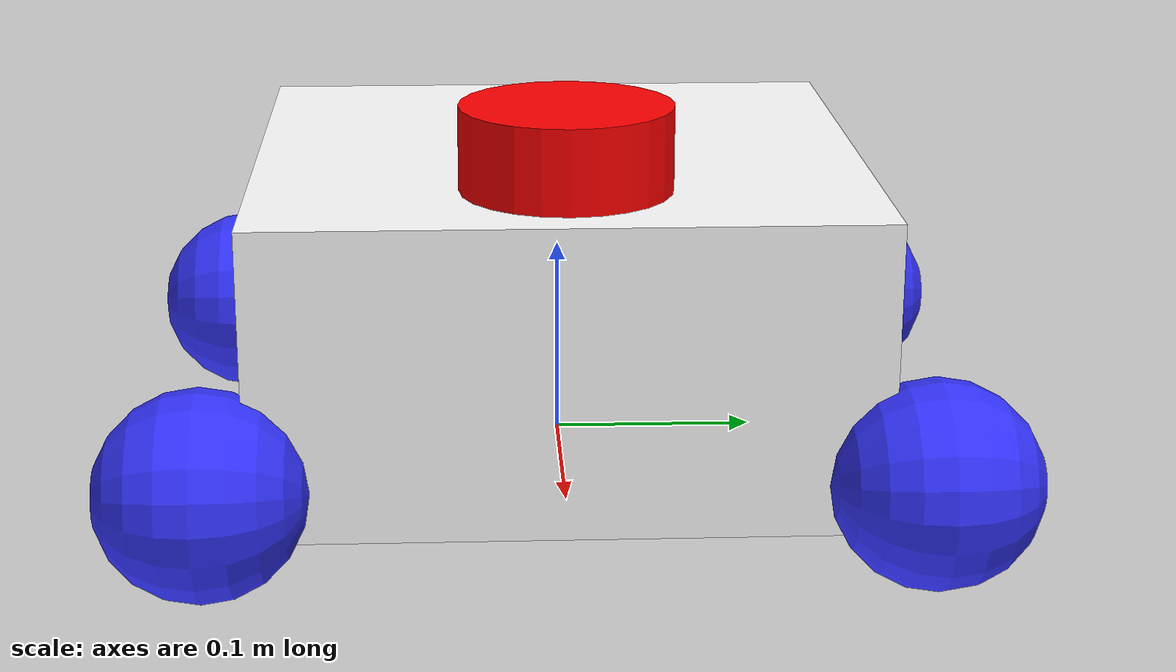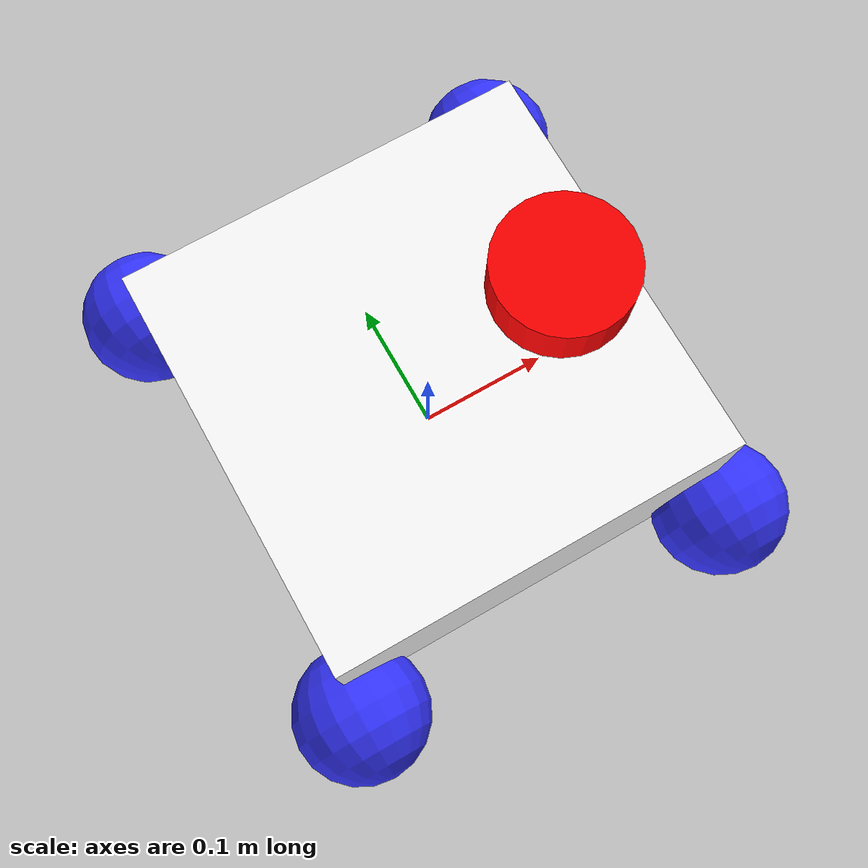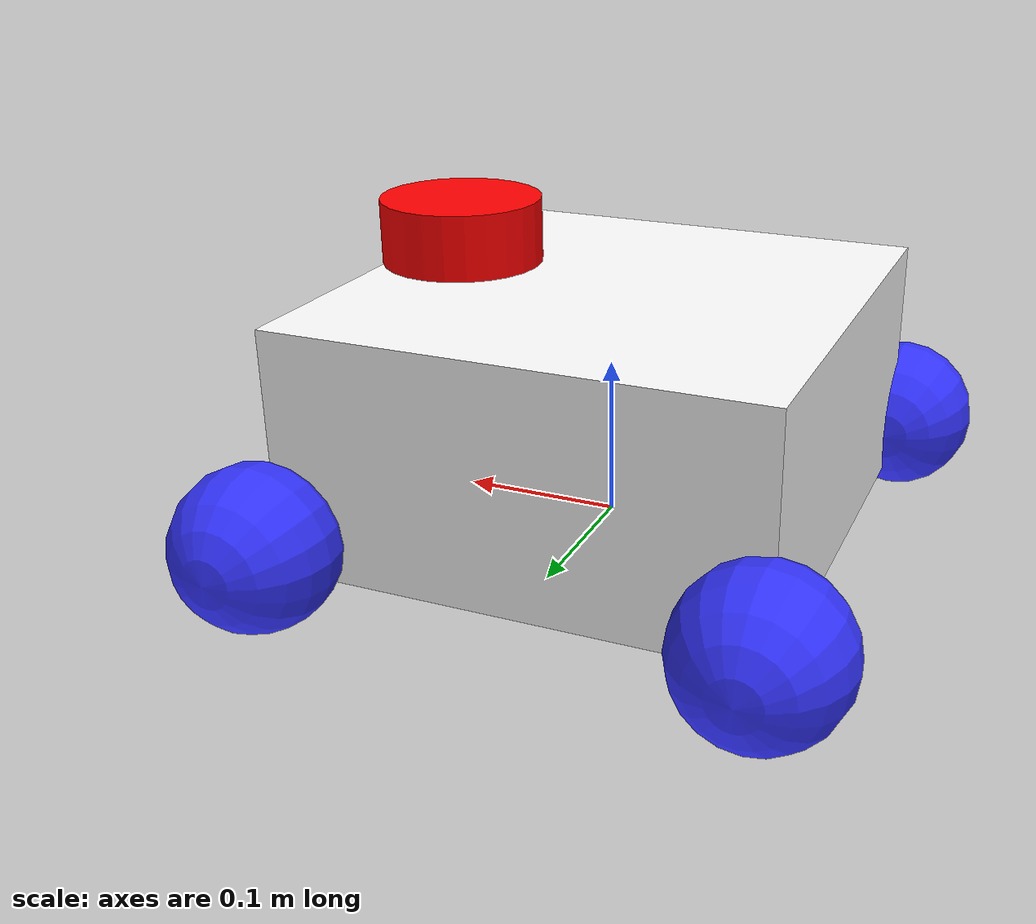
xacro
<?xml version="1.0"?>
<robot xmlns:xacro="http://www.ros.org/xacro" name="robot">
    <xacro:include filename="mecanum_sphere_core.xacro" />
    <xacro:include filename="ros2_control_mecanum_sphere.xacro"/>
    <xacro:include filename="mecanum_lidar.xacro"/>
</robot>

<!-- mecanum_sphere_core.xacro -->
<robot xmlns:xacro="http://www.ros.org/xacro"
      xmlns:gz="http://gazebosim.org/schema">

  <xacro:include filename="inertial_macros_mecanum_sphere.xacro"/>

  <!-- Define Materials -->
  <material name="white">
        <color rgba="1 1 1 1" />
    </material>

    <material name="orange">
        <color rgba="1 0.3 0.1 1"/>
    </material>

    <material name="blue">
        <color rgba="0.2 0.2 1 1"/>
    </material>

    <material name="black">
        <color rgba="0 0 0 1"/>
    </material>

    <material name="red">
        <color rgba="1 0 0 1"></color>
    </material>

  <!-- BASE LINK -->
  <link name="base_link"/>

  <!-- BASE_FOOTPRINT LINK -->
  <joint name="base_footprint_joint" type="fixed">
    <parent link="base_link"/>
    <child link="base_footprint"/>
    <origin xyz="0 0 0" rpy="0 0 0"/>
  </joint>
  <link name="base_footprint"/>

  <!-- CHASSIS -->
  <joint name="chassis_joint" type="fixed">
    <parent link="base_link"/>
    <child link="chassis"/>
    <origin xyz="0 0 0"/>
  </joint>

  <link name="chassis">
    <visual>
      <origin xyz="0 0 0.075"/>
      <geometry>
        <box size="0.3 0.3 0.15"/>
      </geometry>
      <material name="white"/>
    </visual>
    <collision>
      <origin xyz="0 0 0.075"/>
      <geometry>
        <box size="0.3 0.3 0.15"/>
      </geometry>
    </collision>
    <xacro:inertial_box mass="6.0" x="0.3" y="0.3" z="0.15">
      <origin xyz="0 0 0.075" rpy="0 0 0"/>
    </xacro:inertial_box>
  </link>

  <!-- FRONT LEFT WHEEL -->
  <joint name="front_left_wheel_joint" type="continuous">
    <parent link="base_link"/>
    <child link="front_left_wheel"/>
    <origin xyz="0.15 0.17 0.025" rpy="-1.5708 0 0"/>
    <axis xyz="0 0 1"/>
  </joint>

  <link name="front_left_wheel">
    <visual>
      <geometry>
        <sphere radius="0.05"/>
      </geometry>
      <material name="blue"/>
    </visual>
    <collision>
      <geometry>
        <sphere radius="0.05"/>
      </geometry>
    </collision>
    <xacro:inertial_sphere mass="1" radius="0.05">
      <origin xyz="0 0 0" rpy="0 0 0"/>
    </xacro:inertial_sphere>
  </link>

  <!-- FRONT RIGHT WHEEL -->
  <joint name="front_right_wheel_joint" type="continuous">
    <parent link="base_link"/>
    <child link="front_right_wheel"/>
    <origin xyz="0.15 -0.17 0.025" rpy="-1.5708 0 0"/>
    <axis xyz="0 0 1"/>
  </joint>

  <link name="front_right_wheel">
    <visual>
      <geometry>
        <sphere radius="0.05"/>
      </geometry>
      <material name="blue"/>
    </visual>
    <collision>
      <geometry>
        <sphere radius="0.05"/>
      </geometry>
    </collision>
    <xacro:inertial_sphere mass="1" radius="0.05">
      <origin xyz="0 0 0" rpy="0 0 0"/>
    </xacro:inertial_sphere>
  </link>

  <!-- REAR LEFT WHEEL -->
  <joint name="rear_left_wheel_joint" type="continuous">
    <parent link="base_link"/>
    <child link="rear_left_wheel"/>
    <origin xyz="-0.15 0.17 0.025" rpy="-1.5708 0 0"/>
    <axis xyz="0 0 1"/>
  </joint>

  <link name="rear_left_wheel">
    <visual>
      <geometry>
        <sphere radius="0.05"/>
      </geometry>
      <material name="blue"/>
    </visual>
    <collision>
      <geometry>
        <sphere radius="0.05"/>
      </geometry>>
    </collision>
    <xacro:inertial_sphere mass="1" radius="0.05">
      <origin xyz="0 0 0" rpy="0 0 0"/>
    </xacro:inertial_sphere>
  </link>

  <!-- REAR RIGHT WHEEL -->
  <joint name="rear_right_wheel_joint" type="continuous">
    <parent link="base_link"/>
    <child link="rear_right_wheel"/>
    <origin xyz="-0.15 -0.17 0.025" rpy="-1.5708 0 0"/> <!-- No rotation needed for spheres -->
    <axis xyz="0 0 1"/>
  </joint>

<link name="rear_right_wheel">
  <visual>
    <geometry>
      <sphere radius="0.05"/>
    </geometry>
    <material name="blue"/>
  </visual>
  <collision>
    <geometry>
      <sphere radius="0.05"/>
    </geometry>
  </collision>
  <xacro:inertial_sphere mass="1" radius="0.05">
    <origin xyz="0 0 0" rpy="0 0 0"/>
  </xacro:inertial_sphere>
</link>

  <gazebo reference='front_left_wheel'>
    <collision>
      <surface>
        <friction>
          <ode>
            <mu>1.0</mu>
            <mu2>0.0</mu2>
            <fdir1 gz:expressed_in="base_link">1 -1 0</fdir1>
          </ode>
        </friction>
      </surface>
    </collision>
  </gazebo>
  <gazebo reference='front_right_wheel'>
    <collision>
      <surface>
        <friction>
          <ode>
            <mu>1.0</mu>
            <mu2>0.0</mu2>
            <fdir1 gz:expressed_in="base_link">1 1 0</fdir1>
          </ode>
        </friction>
      </surface>
    </collision>
  </gazebo>
  <gazebo reference='rear_left_wheel'>
    <collision>
      <surface>
        <friction>
          <ode>
            <mu>1.0</mu>
            <mu2>0.0</mu2>
            <fdir1 gz:expressed_in="base_link">1 1 0</fdir1>
          </ode>
        </friction>
      </surface>
    </collision>
  </gazebo>
  <gazebo reference='rear_right_wheel'>
    <collision>
      <surface>
        <friction>
          <ode>
            <mu>1.0</mu>
            <mu2>0.0</mu2>
            <fdir1 gz:expressed_in="base_link">1 -1 0</fdir1>
          </ode>
        </friction>
      </surface>
    </collision>
  </gazebo>

</robot>

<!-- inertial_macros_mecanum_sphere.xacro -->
<robot xmlns:xacro="http://www.ros.org/wiki/xacro" >

    <!-- Specify some standard inertial calculations https://en.wikipedia.org/wiki/List_of_moments_of_inertia -->
    <!-- These make use of xacro's mathematical functionality -->

    <xacro:macro name="inertial_sphere" params="mass radius *origin">
        <inertial>
            <xacro:insert_block name="origin"/>
            <mass value="${mass}" />
            <inertia ixx="${(2/5) * mass * (radius*radius)}" ixy="0.0" ixz="0.0"
                    iyy="${(2/5) * mass * (radius*radius)}" iyz="0.0"
                    izz="${(2/5) * mass * (radius*radius)}" />
        </inertial>
    </xacro:macro>

    <xacro:macro name="inertial_box" params="mass x y z *origin">
        <inertial>
            <xacro:insert_block name="origin"/>
            <mass value="${mass}" />
            <inertia ixx="${(1/12) * mass * (y*y+z*z)}" ixy="0.0" ixz="0.0"
                    iyy="${(1/12) * mass * (x*x+z*z)}" iyz="0.0"
                    izz="${(1/12) * mass * (x*x+y*y)}" />
        </inertial>
    </xacro:macro>

</robot>

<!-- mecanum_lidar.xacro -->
<robot xmlns:xacro="http://www.ros.org/wiki/xacro">

    <xacro:include filename="inertial_macros_mecanum_sphere.xacro"/>

    <joint name="laser_joint" type="fixed">
        <parent link="chassis"/>
        <child link="laser_frame"/>
        <!-- puts origin of laser link on top of robot -->
        <origin xyz="0.1 0 0.175" rpy="0 0 0"/>
    </joint>

    <link name="laser_frame">
        <visual>
            <geometry>
                <cylinder radius="0.05" length="0.04"/>
            </geometry>
            <material name="red"/>
        </visual>
        <collision>
            <geometry>
                <cylinder radius="0.05" length="0.04"/>
            </geometry>
        </collision>
        <xacro:inertial_cylinder mass="0.1" length="0.04" radius="0.05">
            <origin xyz="0 0 0" rpy="0 0 0"/>
        </xacro:inertial_cylinder>
    </link>

    <!-- Gazebo Tag -->
    <gazebo reference="laser_frame">
        <material>Gazebo/Red</material>

        <sensor name="laser" type="gpu_lidar">
            <pose> 0 0 0 0 0 0 </pose>
            <!-- visualize in gazebo -->
            <visualize>false</visualize>
            <!-- 10 updates a second -->
            <update_rate>10</update_rate>
            <!-- parameters for lidar sensor -->
            <lidar>
                <scan>
                    <horizontal>
                        <!-- resolution of 1 (1 degree of error) -->
                        <samples>360</samples>
                        <min_angle>-3.14</min_angle>
                        <max_angle>3.14</max_angle>
                    </horizontal>
                </scan>
                <range>
                    <min>0.3</min>
                    <max>12</max>
                </range>
            </lidar>
                <topic>scan</topic>
                <gz_frame_id>laser_frame</gz_frame_id>

        </sensor>
    </gazebo>
</robot>
